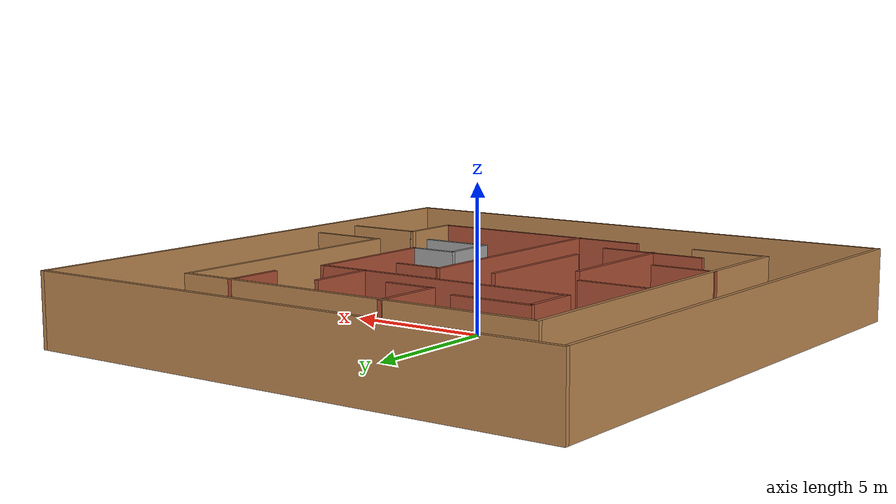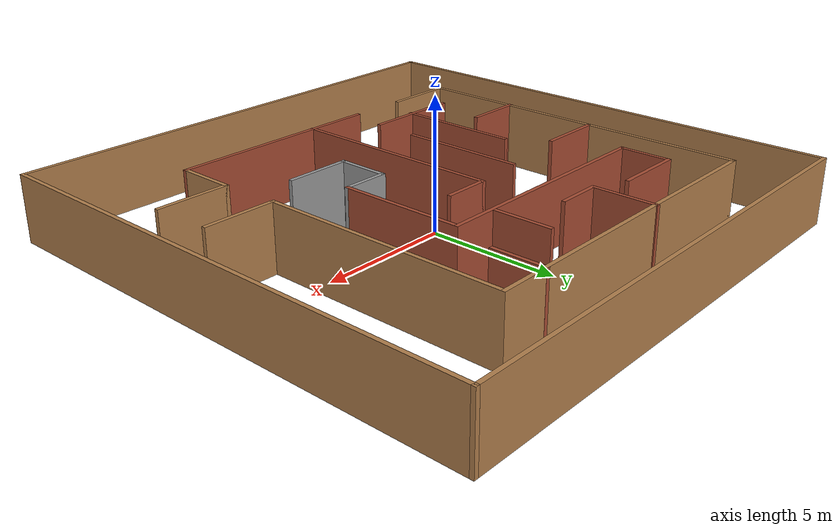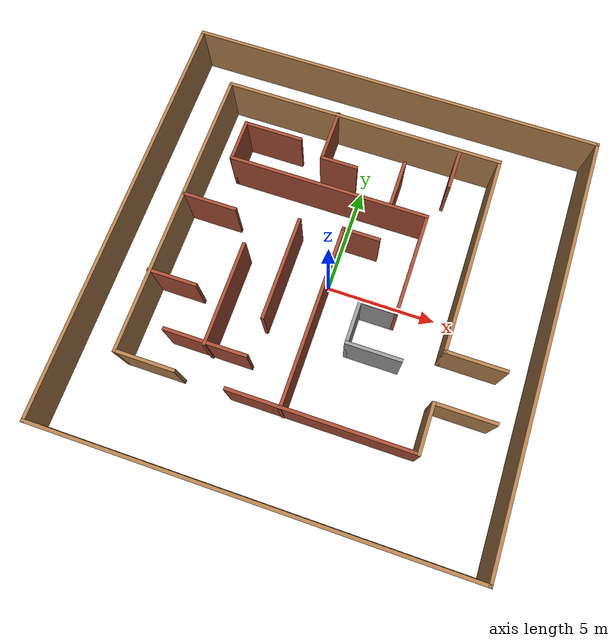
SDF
<?xml version='1.0'?>
<sdf version='1.7'>
  <model name='maze'>
    <pose>0.05 -0.118 0 0 -0 0</pose>
    <link name='Wall_11'>
      <collision name='Wall_11_Collision'>
        <geometry>
          <box>
            <size>13 0.15 2.5</size>
          </box>
        </geometry>
        <pose>0 0 1.25 0 -0 0</pose>
      </collision>
      <visual name='Wall_11_Visual'>
        <pose>0 0 1.25 0 -0 0</pose>
        <geometry>
          <box>
            <size>13 0.15 2.5</size>
          </box>
        </geometry>
        <material>
          <script>
            <uri>file://media/materials/scripts/gazebo.material</uri>
            <name>Gazebo/Wood</name>
          </script>
          <ambient>1 1 1 1</ambient>
        </material>
        <meta>
          <layer>0</layer>
        </meta>
      </visual>
      <pose>-0.832231 7.42868 0 0 -0 0</pose>
    </link>
    <link name='Wall_12'>
      <collision name='Wall_12_Collision'>
        <geometry>
          <box>
            <size>9.25 0.15 2.5</size>
          </box>
        </geometry>
        <pose>0 0 1.25 0 -0 0</pose>
      </collision>
      <visual name='Wall_12_Visual'>
        <pose>0 0 1.25 0 -0 0</pose>
        <geometry>
          <box>
            <size>9.25 0.15 2.5</size>
          </box>
        </geometry>
        <material>
          <script>
            <uri>file://media/materials/scripts/gazebo.material</uri>
            <name>Gazebo/Wood</name>
          </script>
          <ambient>1 1 1 1</ambient>
        </material>
        <meta>
          <layer>0</layer>
        </meta>
      </visual>
      <pose>5.59277 2.87868 0 0 -0 -1.5708</pose>
    </link>
    <link name='Wall_13'>
      <collision name='Wall_13_Collision'>
        <geometry>
          <box>
            <size>2.75 0.15 2.5</size>
          </box>
        </geometry>
        <pose>0 0 1.25 0 -0 0</pose>
      </collision>
      <visual name='Wall_13_Visual'>
        <pose>0 0 1.25 0 -0 0</pose>
        <geometry>
          <box>
            <size>2.75 0.15 2.5</size>
          </box>
        </geometry>
        <material>
          <script>
            <uri>file://media/materials/scripts/gazebo.material</uri>
            <name>Gazebo/Wood</name>
          </script>
          <ambient>1 1 1 1</ambient>
        </material>
        <meta>
          <layer>0</layer>
        </meta>
      </visual>
      <pose>6.89277 -1.67132 0 0 -0 0</pose>
    </link>
    <link name='Wall_15'>
      <collision name='Wall_15_Collision'>
        <geometry>
          <box>
            <size>2.75 0.15 2.5</size>
          </box>
        </geometry>
        <pose>0 0 1.25 0 -0 0</pose>
      </collision>
      <visual name='Wall_15_Visual'>
        <pose>0 0 1.25 0 -0 0</pose>
        <geometry>
          <box>
            <size>2.75 0.15 2.5</size>
          </box>
        </geometry>
        <material>
          <script>
            <uri>file://media/materials/scripts/gazebo.material</uri>
            <name>Gazebo/Wood</name>
          </script>
          <ambient>1 1 1 1</ambient>
        </material>
        <meta>
          <layer>0</layer>
        </meta>
      </visual>
      <pose>7.0177 -3.84239 0 0 -0 0</pose>
    </link>
    <link name='Wall_17'>
      <collision name='Wall_17_Collision'>
        <geometry>
          <box>
            <size>2.25 0.15 2.5</size>
          </box>
        </geometry>
        <pose>0 0 1.25 0 -0 0</pose>
      </collision>
      <visual name='Wall_17_Visual'>
        <pose>0 0 1.25 0 -0 0</pose>
        <geometry>
          <box>
            <size>2.25 0.15 2.5</size>
          </box>
        </geometry>
        <material>
          <script>
            <uri>file://media/materials/scripts/gazebo.material</uri>
            <name>Gazebo/Wood</name>
          </script>
          <ambient>1 1 1 1</ambient>
        </material>
        <meta>
          <layer>0</layer>
        </meta>
      </visual>
      <pose>5.7177 -4.89239 0 0 -0 -1.5708</pose>
    </link>
    <link name='Wall_19'>
      <collision name='Wall_19_Collision'>
        <geometry>
          <box>
            <size>8.25 0.15 2.5</size>
          </box>
        </geometry>
        <pose>0 0 1.25 0 -0 0</pose>
      </collision>
      <visual name='Wall_19_Visual'>
        <pose>0 0 1.25 0 -0 0</pose>
        <geometry>
          <box>
            <size>8.25 0.15 2.5</size>
          </box>
        </geometry>
        <material>
          <script>
            <uri>file://media/materials/scripts/gazebo.material</uri>
            <name>Gazebo/Bricks</name>
          </script>
          <ambient>1 1 1 1</ambient>
        </material>
        <meta>
          <layer>0</layer>
        </meta>
      </visual>
      <pose>1.6677 -5.94239 0 0 -0 3.14159</pose>
    </link>
    <link name='Wall_21'>
      <collision name='Wall_21_Collision'>
        <geometry>
          <box>
            <size>3.75 0.15 2.5</size>
          </box>
        </geometry>
        <pose>0 0 1.25 0 -0 0</pose>
      </collision>
      <visual name='Wall_21_Visual'>
        <pose>0 0 1.25 0 -0 0</pose>
        <geometry>
          <box>
            <size>3.75 0.15 2.5</size>
          </box>
        </geometry>
        <material>
          <script>
            <uri>file://media/materials/scripts/gazebo.material</uri>
            <name>Gazebo/Bricks</name>
          </script>
          <ambient>1 1 1 1</ambient>
        </material>
        <meta>
          <layer>0</layer>
        </meta>
      </visual>
      <pose>-3.88528 -4.41956 0 0 -0 0</pose>
    </link>
    <link name='Wall_23'>
      <collision name='Wall_23_Collision'>
        <geometry>
          <box>
            <size>4.75 0.15 2.5</size>
          </box>
        </geometry>
        <pose>0 0 1.25 0 -0 0</pose>
      </collision>
      <visual name='Wall_23_Visual'>
        <pose>0 0 1.25 0 -0 0</pose>
        <geometry>
          <box>
            <size>4.75 0.15 2.5</size>
          </box>
        </geometry>
        <material>
          <script>
            <uri>file://media/materials/scripts/gazebo.material</uri>
            <name>Gazebo/Bricks</name>
          </script>
          <ambient>1 1 1 1</ambient>
        </material>
        <meta>
          <layer>0</layer>
        </meta>
      </visual>
      <pose>-3.88434 -2.18089 0 0 -0 -1.5708</pose>
    </link>
    <link name='Wall_25'>
      <collision name='Wall_25_Collision'>
        <geometry>
          <box>
            <size>2.25 0.15 2.5</size>
          </box>
        </geometry>
        <pose>0 0 1.25 0 -0 0</pose>
      </collision>
      <visual name='Wall_25_Visual'>
        <pose>0 0 1.25 0 -0 0</pose>
        <geometry>
          <box>
            <size>2.25 0.15 2.5</size>
          </box>
        </geometry>
        <material>
          <script>
            <uri>file://media/materials/scripts/gazebo.material</uri>
            <name>Gazebo/Bricks</name>
          </script>
          <ambient>1 1 1 1</ambient>
        </material>
        <meta>
          <layer>0</layer>
        </meta>
      </visual>
      <pose>-6.24491 -2.24205 0 0 -0 0</pose>
    </link>
    <link name='Wall_27'>
      <collision name='Wall_27_Collision'>
        <geometry>
          <box>
            <size>8.276 0.15 2.5</size>
          </box>
        </geometry>
        <pose>0 0 1.25 0 -0 0</pose>
      </collision>
      <visual name='Wall_27_Visual'>
        <pose>0 0 1.25 0 -0 0</pose>
        <geometry>
          <box>
            <size>8.276 0.15 2.5</size>
          </box>
        </geometry>
        <material>
          <script>
            <uri>file://media/materials/scripts/gazebo.material</uri>
            <name>Gazebo/Bricks</name>
          </script>
          <ambient>1 1 1 1</ambient>
        </material>
        <meta>
          <layer>0</layer>
        </meta>
      </visual>
      <pose>-0.05 -1.904 0 0 -0 1.5708</pose>
    </link>
    <link name='Wall_28'>
      <collision name='Wall_28_Collision'>
        <geometry>
          <box>
            <size>1.75 0.15 2.5</size>
          </box>
        </geometry>
        <pose>0 0 1.25 0 -0 0</pose>
      </collision>
      <visual name='Wall_28_Visual'>
        <pose>0 0 1.25 0 -0 0</pose>
        <geometry>
          <box>
            <size>1.75 0.15 2.5</size>
          </box>
        </geometry>
        <material>
          <script>
            <uri>file://media/materials/scripts/gazebo.material</uri>
            <name>Gazebo/Bricks</name>
          </script>
          <ambient>1 1 1 1</ambient>
        </material>
        <meta>
          <layer>0</layer>
        </meta>
      </visual>
      <pose>0.75 2.159 0 0 -0 0</pose>
    </link>
    <link name='Wall_3'>
      <collision name='Wall_3_Collision'>
        <geometry>
          <box>
            <size>19.25 0.15 2.5</size>
          </box>
        </geometry>
        <pose>0 0 1.25 0 -0 0</pose>
      </collision>
      <visual name='Wall_3_Visual'>
        <pose>0 0 1.25 0 -0 0</pose>
        <geometry>
          <box>
            <size>19.25 0.15 2.5</size>
          </box>
        </geometry>
        <material>
          <script>
            <uri>file://media/materials/scripts/gazebo.material</uri>
            <name>Gazebo/Wood</name>
          </script>
          <ambient>1 1 1 1</ambient>
        </material>
        <meta>
          <layer>0</layer>
        </meta>
      </visual>
      <pose>-0 -9.675 0 0 -0 0</pose>
    </link>
    <link name='Wall_30'>
      <collision name='Wall_30_Collision'>
        <geometry>
          <box>
            <size>4.75 0.15 2.5</size>
          </box>
        </geometry>
        <pose>0 0 1.25 0 -0 0</pose>
      </collision>
      <visual name='Wall_30_Visual'>
        <pose>0 0 1.25 0 -0 0</pose>
        <geometry>
          <box>
            <size>4.75 0.15 2.5</size>
          </box>
        </geometry>
        <material>
          <script>
            <uri>file://media/materials/scripts/gazebo.material</uri>
            <name>Gazebo/Bricks</name>
          </script>
          <ambient>1 1 1 1</ambient>
        </material>
        <meta>
          <layer>0</layer>
        </meta>
      </visual>
      <pose>-1.99606 -0.365231 0 0 -0 -1.5708</pose>
    </link>
    <link name='Wall_32'>
      <collision name='Wall_32_Collision'>
        <geometry>
          <box>
            <size>2.5 0.15 2.5</size>
          </box>
        </geometry>
        <pose>0 0 1.25 0 -0 0</pose>
      </collision>
      <visual name='Wall_32_Visual'>
        <pose>0 0 1.25 0 -0 0</pose>
        <geometry>
          <box>
            <size>2.5 0.15 2.5</size>
          </box>
        </geometry>
        <material>
          <script>
            <uri>file://media/materials/scripts/gazebo.material</uri>
            <name>Gazebo/Bricks</name>
          </script>
          <ambient>1 1 1 1</ambient>
        </material>
        <meta>
          <layer>0</layer>
        </meta>
      </visual>
      <pose>-6.01849 1.53802 0 0 -0 0</pose>
    </link>
    <link name='Wall_34'>
      <collision name='Wall_34_Collision'>
        <geometry>
          <box>
            <size>2.75 0.15 2.5</size>
          </box>
        </geometry>
        <pose>0 0 1.25 0 -0 0</pose>
      </collision>
      <visual name='Wall_34_Visual'>
        <pose>0 0 1.25 0 -0 0</pose>
        <geometry>
          <box>
            <size>2.75 0.15 2.5</size>
          </box>
        </geometry>
        <material>
          <script>
            <uri>file://media/materials/scripts/gazebo.material</uri>
            <name>Gazebo/Bricks</name>
          </script>
          <ambient>1 1 1 1</ambient>
        </material>
        <meta>
          <layer>0</layer>
        </meta>
      </visual>
      <pose>-4.56543 5.70389 0 0 -0 3.14159</pose>
    </link>
    <link name='Wall_35'>
      <collision name='Wall_35_Collision'>
        <geometry>
          <box>
            <size>2 0.15 2.5</size>
          </box>
        </geometry>
        <pose>0 0 1.25 0 -0 0</pose>
      </collision>
      <visual name='Wall_35_Visual'>
        <pose>0 0 1.25 0 -0 0</pose>
        <geometry>
          <box>
            <size>2 0.15 2.5</size>
          </box>
        </geometry>
        <material>
          <script>
            <uri>file://media/materials/scripts/gazebo.material</uri>
            <name>Gazebo/Bricks</name>
          </script>
          <ambient>1 1 1 1</ambient>
        </material>
        <meta>
          <layer>0</layer>
        </meta>
      </visual>
      <pose>-5.86543 4.77889 0 0 -0 -1.5708</pose>
    </link>
    <link name='Wall_36'>
      <collision name='Wall_36_Collision'>
        <geometry>
          <box>
            <size>9.25 0.15 2.5</size>
          </box>
        </geometry>
        <pose>0 0 1.25 0 -0 0</pose>
      </collision>
      <visual name='Wall_36_Visual'>
        <pose>0 0 1.25 0 -0 0</pose>
        <geometry>
          <box>
            <size>9.25 0.15 2.5</size>
          </box>
        </geometry>
        <material>
          <script>
            <uri>file://media/materials/scripts/gazebo.material</uri>
            <name>Gazebo/Bricks</name>
          </script>
          <ambient>1 1 1 1</ambient>
        </material>
        <meta>
          <layer>0</layer>
        </meta>
      </visual>
      <pose>-1.31543 3.85389 0 0 -0 0</pose>
    </link>
    <link name='Wall_37'>
      <collision name='Wall_37_Collision'>
        <geometry>
          <box>
            <size>4.75 0.15 2.5</size>
          </box>
        </geometry>
        <pose>0 0 1.25 0 -0 0</pose>
      </collision>
      <visual name='Wall_37_Visual'>
        <pose>0 0 1.25 0 -0 0</pose>
        <geometry>
          <box>
            <size>4.75 0.15 2.5</size>
          </box>
        </geometry>
        <material>
          <script>
            <uri>file://media/materials/scripts/gazebo.material</uri>
            <name>Gazebo/Bricks</name>
          </script>
          <ambient>1 1 1 1</ambient>
        </material>
        <meta>
          <layer>0</layer>
        </meta>
      </visual>
      <pose>3.23457 1.55389 0 0 -0 -1.5708</pose>
    </link>
    <link name='Wall_38'>
      <collision name='Wall_38_Collision'>
        <geometry>
          <box>
            <size>1.75 0.15 2.5</size>
          </box>
        </geometry>
        <pose>0 0 1.25 0 -0 0</pose>
      </collision>
      <visual name='Wall_38_Visual'>
        <pose>0 0 1.25 0 -0 0</pose>
        <geometry>
          <box>
            <size>1.75 0.15 2.5</size>
          </box>
        </geometry>
        <material>
          <script>
            <uri>file://media/materials/scripts/gazebo.material</uri>
            <name>Gazebo/Grey</name>
          </script>
          <ambient>1 1 1 1</ambient>
        </material>
        <meta>
          <layer>0</layer>
        </meta>
      </visual>
      <pose>2.43457 -0.746106 0 0 -0 3.14159</pose>
    </link>
    <link name='Wall_39'>
      <collision name='Wall_39_Collision'>
        <geometry>
          <box>
            <size>2 0.15 2.5</size>
          </box>
        </geometry>
        <pose>0 0 1.25 0 -0 0</pose>
      </collision>
      <visual name='Wall_39_Visual'>
        <pose>0 0 1.25 0 -0 0</pose>
        <geometry>
          <box>
            <size>2 0.15 2.5</size>
          </box>
        </geometry>
        <material>
          <script>
            <uri>file://media/materials/scripts/gazebo.material</uri>
            <name>Gazebo/Grey</name>
          </script>
          <ambient>1 1 1 1</ambient>
        </material>
        <meta>
          <layer>0</layer>
        </meta>
      </visual>
      <pose>1.63457 -1.67111 0 0 -0 -1.5708</pose>
    </link>
    <link name='Wall_4'>
      <collision name='Wall_4_Collision'>
        <geometry>
          <box>
            <size>19.5 0.15 2.5</size>
          </box>
        </geometry>
        <pose>0 0 1.25 0 -0 0</pose>
      </collision>
      <visual name='Wall_4_Visual'>
        <pose>0 0 1.25 0 -0 0</pose>
        <geometry>
          <box>
            <size>19.5 0.15 2.5</size>
          </box>
        </geometry>
        <material>
          <script>
            <uri>file://media/materials/scripts/gazebo.material</uri>
            <name>Gazebo/Wood</name>
          </script>
          <ambient>1 1 1 1</ambient>
        </material>
        <meta>
          <layer>0</layer>
        </meta>
      </visual>
      <pose>9.55 0 0 0 -0 1.5708</pose>
    </link>
    <link name='Wall_40'>
      <collision name='Wall_40_Collision'>
        <geometry>
          <box>
            <size>2.5 0.15 2.5</size>
          </box>
        </geometry>
        <pose>0 0 1.25 0 -0 0</pose>
      </collision>
      <visual name='Wall_40_Visual'>
        <pose>0 0 1.25 0 -0 0</pose>
        <geometry>
          <box>
            <size>2.5 0.15 2.5</size>
          </box>
        </geometry>
        <material>
          <script>
            <uri>file://media/materials/scripts/gazebo.material</uri>
            <name>Gazebo/Grey</name>
          </script>
          <ambient>1 1 1 1</ambient>
        </material>
        <meta>
          <layer>0</layer>
        </meta>
      </visual>
      <pose>2.80957 -2.59611 0 0 -0 0</pose>
    </link>
    <link name='Wall_42'>
      <collision name='Wall_42_Collision'>
        <geometry>
          <box>
            <size>2.46033 0.15 2.5</size>
          </box>
        </geometry>
        <pose>0 0 1.25 0 -0 0</pose>
      </collision>
      <visual name='Wall_42_Visual'>
        <pose>0 0 1.25 0 -0 0</pose>
        <geometry>
          <box>
            <size>2.46033 0.15 2.5</size>
          </box>
        </geometry>
        <material>
          <script>
            <uri>file://media/materials/scripts/gazebo.material</uri>
            <name>Gazebo/Bricks</name>
          </script>
          <ambient>1 1 1 1</ambient>
        </material>
        <meta>
          <layer>0</layer>
        </meta>
      </visual>
      <pose>-2.03574 6.31427 0 0 -0 -1.5708</pose>
    </link>
    <link name='Wall_43'>
      <collision name='Wall_43_Collision'>
        <geometry>
          <box>
            <size>1.75 0.15 2.5</size>
          </box>
        </geometry>
        <pose>0 0 1.25 0 -0 0</pose>
      </collision>
      <visual name='Wall_43_Visual'>
        <pose>0 0 1.25 0 -0 0</pose>
        <geometry>
          <box>
            <size>1.75 0.15 2.5</size>
          </box>
        </geometry>
        <material>
          <script>
            <uri>file://media/materials/scripts/gazebo.material</uri>
            <name>Gazebo/Bricks</name>
          </script>
          <ambient>1 1 1 1</ambient>
        </material>
        <meta>
          <layer>0</layer>
        </meta>
      </visual>
      <pose>-1.23574 5.13927 0 0 -0 0</pose>
    </link>
    <link name='Wall_45'>
      <collision name='Wall_45_Collision'>
        <geometry>
          <box>
            <size>2.25 0.15 2.5</size>
          </box>
        </geometry>
        <pose>0 0 1.25 0 -0 0</pose>
      </collision>
      <visual name='Wall_45_Visual'>
        <pose>0 0 1.25 0 -0 0</pose>
        <geometry>
          <box>
            <size>2.25 0.15 2.5</size>
          </box>
        </geometry>
        <material>
          <script>
            <uri>file://media/materials/scripts/gazebo.material</uri>
            <name>Gazebo/Bricks</name>
          </script>
          <ambient>1 1 1 1</ambient>
        </material>
        <meta>
          <layer>0</layer>
        </meta>
      </visual>
      <pose>1.55485 4.97129 0 0 -0 -1.5708</pose>
    </link>
    <link name='Wall_47'>
      <collision name='Wall_47_Collision'>
        <geometry>
          <box>
            <size>2 0.15 2.5</size>
          </box>
        </geometry>
        <pose>0 0 1.25 0 -0 0</pose>
      </collision>
      <visual name='Wall_47_Visual'>
        <pose>0 0 1.25 0 -0 0</pose>
        <geometry>
          <box>
            <size>2 0.15 2.5</size>
          </box>
        </geometry>
        <material>
          <script>
            <uri>file://media/materials/scripts/gazebo.material</uri>
            <name>Gazebo/Bricks</name>
          </script>
          <ambient>1 1 1 1</ambient>
        </material>
        <meta>
          <layer>0</layer>
        </meta>
      </visual>
      <pose>3.75681 6.50476 0 0 -0 -1.5708</pose>
    </link>
    <link name='Wall_5'>
      <collision name='Wall_5_Collision'>
        <geometry>
          <box>
            <size>19.25 0.15 2.5</size>
          </box>
        </geometry>
        <pose>0 0 1.25 0 -0 0</pose>
      </collision>
      <visual name='Wall_5_Visual'>
        <pose>0 0 1.25 0 -0 0</pose>
        <geometry>
          <box>
            <size>19.25 0.15 2.5</size>
          </box>
        </geometry>
        <material>
          <script>
            <uri>file://media/materials/scripts/gazebo.material</uri>
            <name>Gazebo/Wood</name>
          </script>
          <ambient>1 1 1 1</ambient>
        </material>
        <meta>
          <layer>0</layer>
        </meta>
      </visual>
      <pose>-0 9.675 0 0 -0 3.14159</pose>
    </link>
    <link name='Wall_6'>
      <collision name='Wall_6_Collision'>
        <geometry>
          <box>
            <size>19.5 0.15 2.5</size>
          </box>
        </geometry>
        <pose>0 0 1.25 0 -0 0</pose>
      </collision>
      <visual name='Wall_6_Visual'>
        <pose>0 0 1.25 0 -0 0</pose>
        <geometry>
          <box>
            <size>19.5 0.15 2.5</size>
          </box>
        </geometry>
        <material>
          <script>
            <uri>file://media/materials/scripts/gazebo.material</uri>
            <name>Gazebo/Wood</name>
          </script>
          <ambient>1 1 1 1</ambient>
        </material>
        <meta>
          <layer>0</layer>
        </meta>
      </visual>
      <pose>-9.55 0 0 0 -0 -1.5708</pose>
    </link>
    <link name='Wall_8'>
      <collision name='Wall_8_Collision'>
        <geometry>
          <box>
            <size>13.5 0.15 2.5</size>
          </box>
        </geometry>
        <pose>0 0 1.25 0 -0 0</pose>
      </collision>
      <visual name='Wall_8_Visual'>
        <pose>0 0 1.25 0 -0 0</pose>
        <geometry>
          <box>
            <size>13.5 0.15 2.5</size>
          </box>
        </geometry>
        <material>
          <script>
            <uri>file://media/materials/scripts/gazebo.material</uri>
            <name>Gazebo/Wood</name>
          </script>
          <ambient>1 1 1 1</ambient>
        </material>
        <meta>
          <layer>0</layer>
        </meta>
      </visual>
      <pose>-7.25723 0.753679 0 0 -0 -1.5708</pose>
    </link>
    <link name='Wall_9'>
      <collision name='Wall_9_Collision'>
        <geometry>
          <box>
            <size>2.75 0.15 2.5</size>
          </box>
        </geometry>
        <pose>0 0 1.25 0 -0 0</pose>
      </collision>
      <visual name='Wall_9_Visual'>
        <pose>0 0 1.25 0 -0 0</pose>
        <geometry>
          <box>
            <size>2.75 0.15 2.5</size>
          </box>
        </geometry>
        <material>
          <script>
            <uri>file://media/materials/scripts/gazebo.material</uri>
            <name>Gazebo/Wood</name>
          </script>
          <ambient>1 1 1 1</ambient>
        </material>
        <meta>
          <layer>0</layer>
        </meta>
      </visual>
      <pose>-5.95723 -5.92132 0 0 -0 0</pose>
    </link>
    <static>1</static>
  </model>
</sdf>
